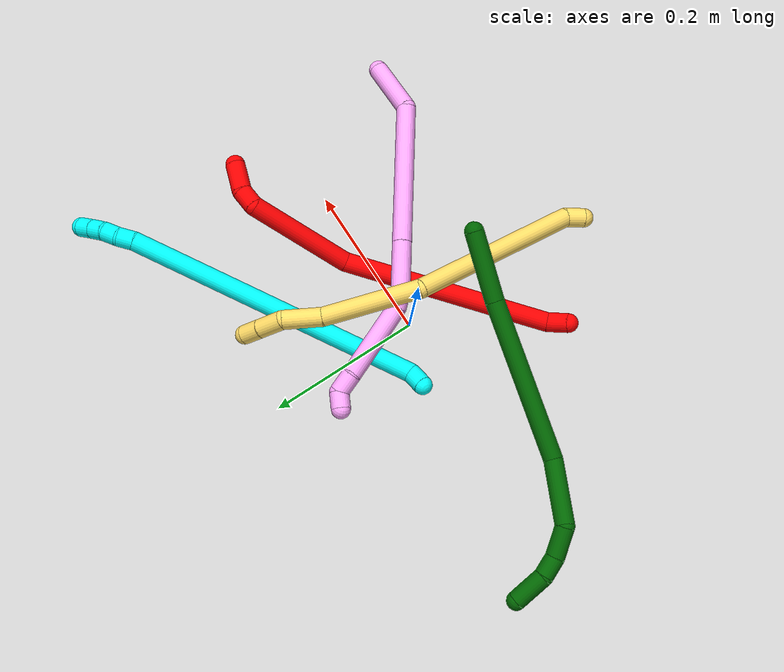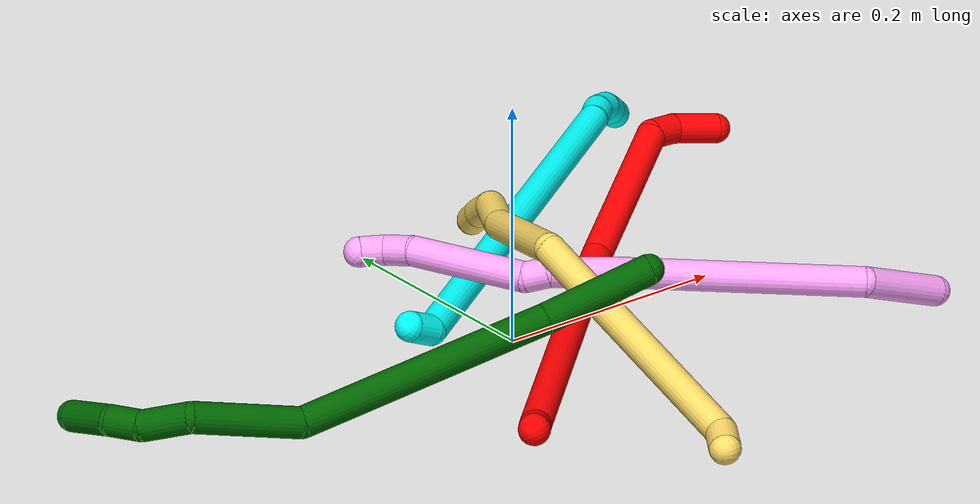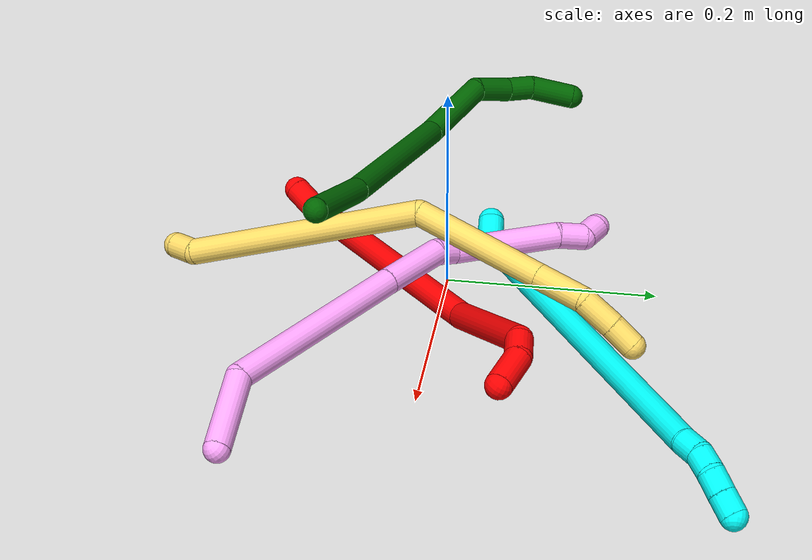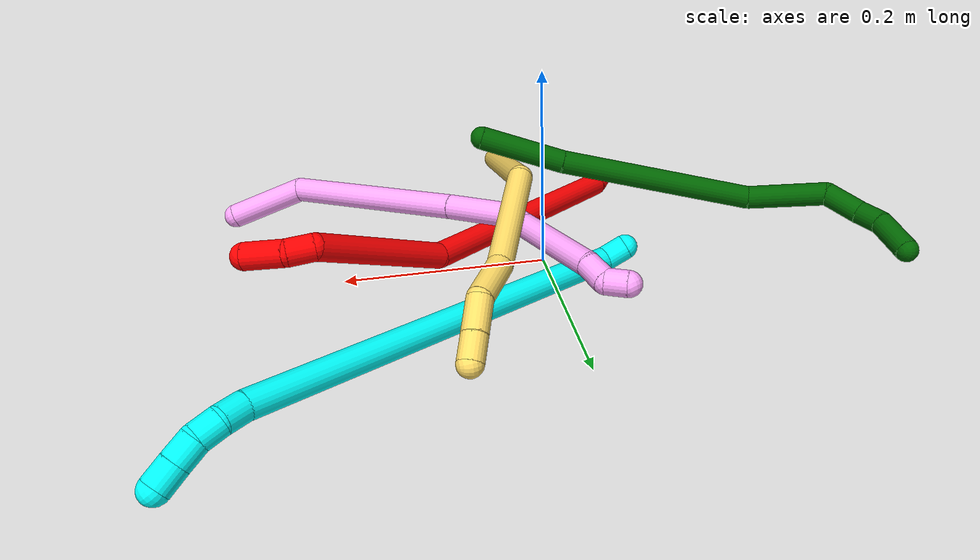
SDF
<sdf version="1.7">
 <world name="default">
  <model name="photoneo_s_sensor">
   <static>1</static>
   <pose>0 0 2 1.57079 1.57079 3.14159</pose>
   <link name="link">
    <inertial><mass>0.1</mass></inertial>
    <sensor name="sensor" type="depth">
     <update_rate>30</update_rate>
     <camera>
      <horizontal_fov>1.22</horizontal_fov>
      <image><width>1920</width><height>1200</height><format>B8G8R8</format></image>
      <clip><near>0.1</near><far>4</far></clip>
      <depth_camera><output>points</output></depth_camera>
     </camera>
     <plugin name="camera_plugin" filename="libgazebo_ros_depth_camera.so">
      <baseline>0.2</baseline>
      <alwaysOn>1</alwaysOn>
      <updateRate>0.0</updateRate>
      <cameraName>camera_ir</cameraName>
      <imageTopicName>/camera/color/image_raw</imageTopicName>
      <cameraInfoTopicName>/camera/color/camera_info</cameraInfoTopicName>
      <depthImageTopicName>/camera/depth/image_raw</depthImageTopicName>
      <depthImageCameraInfoTopicName>/camera/depth/camera_info</depthImageCameraInfoTopicName>
      <pointCloudTopicName>/camera/depth/points</pointCloudTopicName>
      <frameName>fr_optical</frameName>
      <pointCloudCutoff>0.1</pointCloudCutoff>
      <pointCloudCutoffMax>2.0</pointCloudCutoffMax>
      <distortionK1>0</distortionK1>
      <distortionK2>0</distortionK2>
      <distortionK3>0</distortionK3>
      <distortionT1>0</distortionT1>
      <distortionT2>0</distortionT2>
      <CxPrime>0</CxPrime>
      <Cx>0</Cx>
      <Cy>0</Cy>
      <focalLength>0</focalLength>
      <hackBaseline>0</hackBaseline>
     </plugin>
    </sensor>
   </link>
  </model>
  <model name="bin">
   <static>1</static>
   <link name="bottom">
    <collision name="collision-bottom">
     <pose>0 0 -0.01 0 -0 0</pose>
     <geometry><box><size>0.8 0.6 0.02</size></box></geometry>
     <surface>
      <friction><ode><mu>100</mu><mu2>100</mu2></ode></friction>
      <contact><collide_bitmask>65535</collide_bitmask></contact>
     </surface>
    </collision>
   </link>
   <link name="west_wall">
    <collision name="collision-west_wall">
     <pose>-0.41 0 0.1 0 -0 0</pose>
     <geometry><box><size>0.02 0.6 0.2</size></box></geometry>
     <surface>
      <friction><ode><mu>100</mu><mu2>100</mu2></ode></friction>
      <contact><collide_bitmask>65535</collide_bitmask></contact>
     </surface>
    </collision>
   </link>
   <link name="east_wall">
    <collision name="collision-east_wall">
     <pose>0.41 0 0.1 0 -0 0</pose>
     <geometry><box><size>0.02 0.6 0.2</size></box></geometry>
     <surface>
      <friction><ode><mu>100</mu><mu2>100</mu2></ode></friction>
      <contact><collide_bitmask>65535</collide_bitmask></contact>
     </surface>
    </collision>
   </link>
   <link name="south_wall">
    <collision name="collision-south_wall">
     <pose>0 -0.31 0.1 0 -0 0</pose>
     <geometry><box><size>0.8 0.02 0.2</size></box></geometry>
     <surface>
      <friction><ode><mu>100</mu><mu2>100</mu2></ode></friction>
      <contact><collide_bitmask>65535</collide_bitmask></contact>
     </surface>
    </collision>
   </link>
   <link name="north_wall">
    <collision name="collision-north_wall">
     <pose>0 0.31 0.1 0 -0 0</pose>
     <geometry><box><size>0.8 0.02 0.2</size></box></geometry>
     <surface>
      <friction><ode><mu>100</mu><mu2>100</mu2></ode></friction>
      <contact><collide_bitmask>65535</collide_bitmask></contact>
     </surface>
    </collision>
   </link>
  </model>
  <model name="2">
   <static>0</static>
   <link name="2">
    <collision name="collision-cylinder-e_1_1_4">
     <pose>0.00579 0.012523 -0.000291 -1.59406 0.432994 -0.442858</pose>
     <geometry><cylinder><radius>0.0125</radius><length>0.027599</length></cylinder></geometry>
     <surface>
      <friction><ode><mu>1.16</mu><mu2>1.16</mu2><slip1>0</slip1><slip2>0</slip2></ode></friction>
      <contact><ode><kp>1e+06</kp><kd>1</kd><max_vel>0</max_vel><min_depth>0.001</min_depth></ode></contact>
     </surface>
    </collision>
    <visual name="visual-cylinder-e_1_1_4">
     <pose>0.00579 0.012523 -0.000291 -1.59406 0.432994 -0.442858</pose>
     <geometry><cylinder><radius>0.0125</radius><length>0.027599</length></cylinder></geometry>
     <material><ambient>1 0 0 1</ambient></material>
    </visual>
    <collision name="collision-cylinder-e_2_4_5">
     <pose>0.100449 0.119313 0.037824 -1.18391 0.717724 -0.494125</pose>
     <geometry><cylinder><radius>0.0125</radius><length>0.270252</length></cylinder></geometry>
     <surface>
      <friction><ode><mu>1.16</mu><mu2>1.16</mu2><slip1>0</slip1><slip2>0</slip2></ode></friction>
      <contact><ode><kp>1e+06</kp><kd>1</kd><max_vel>0</max_vel><min_depth>0.001</min_depth></ode></contact>
     </surface>
    </collision>
    <visual name="visual-cylinder-e_2_4_5">
     <pose>0.100449 0.119313 0.037824 -1.18391 0.717724 -0.494125</pose>
     <geometry><cylinder><radius>0.0125</radius><length>0.270252</length></cylinder></geometry>
     <material><ambient>1 0 0 1</ambient></material>
    </visual>
    <collision name="collision-cylinder-e_3_5_6">
     <pose>0.244557 0.241364 0.108525 -0.710474 0.913865 -0.360802</pose>
     <geometry><cylinder><radius>0.0125</radius><length>0.139516</length></cylinder></geometry>
     <surface>
      <friction><ode><mu>1.16</mu><mu2>1.16</mu2><slip1>0</slip1><slip2>0</slip2></ode></friction>
      <contact><ode><kp>1e+06</kp><kd>1</kd><max_vel>0</max_vel><min_depth>0.001</min_depth></ode></contact>
     </surface>
    </collision>
    <visual name="visual-cylinder-e_3_5_6">
     <pose>0.244557 0.241364 0.108525 -0.710474 0.913865 -0.360802</pose>
     <geometry><cylinder><radius>0.0125</radius><length>0.139516</length></cylinder></geometry>
     <material><ambient>1 0 0 1</ambient></material>
    </visual>
    <collision name="collision-cylinder-e_4_6_7">
     <pose>0.311324 0.273181 0.138852 -2.0244 1.19965 -1.66072</pose>
     <geometry><cylinder><radius>0.0125</radius><length>0.02474</length></cylinder></geometry>
     <surface>
      <friction><ode><mu>1.16</mu><mu2>1.16</mu2><slip1>0</slip1><slip2>0</slip2></ode></friction>
      <contact><ode><kp>1e+06</kp><kd>1</kd><max_vel>0</max_vel><min_depth>0.001</min_depth></ode></contact>
     </surface>
    </collision>
    <visual name="visual-cylinder-e_4_6_7">
     <pose>0.311324 0.273181 0.138852 -2.0244 1.19965 -1.66072</pose>
     <geometry><cylinder><radius>0.0125</radius><length>0.02474</length></cylinder></geometry>
     <material><ambient>1 0 0 1</ambient></material>
    </visual>
    <collision name="collision-cylinder-e_5_7_2">
     <pose>0.340233 0.277027 0.129348 3.11687 1.16149 3.10393</pose>
     <geometry><cylinder><radius>0.0125</radius><length>0.037892</length></cylinder></geometry>
     <surface>
      <friction><ode><mu>1.16</mu><mu2>1.16</mu2><slip1>0</slip1><slip2>0</slip2></ode></friction>
      <contact><ode><kp>1e+06</kp><kd>1</kd><max_vel>0</max_vel><min_depth>0.001</min_depth></ode></contact>
     </surface>
    </collision>
    <visual name="visual-cylinder-e_5_7_2">
     <pose>0.340233 0.277027 0.129348 3.11687 1.16149 3.10393</pose>
     <geometry><cylinder><radius>0.0125</radius><length>0.037892</length></cylinder></geometry>
     <material><ambient>1 0 0 1</ambient></material>
    </visual>
    <collision name="collision-sphere-2">
     <pose>0.357614 0.276841 0.12181 0 -0 0</pose>
     <geometry><sphere><radius>0.0125</radius></sphere></geometry>
     <surface>
      <friction><ode><mu>1.16</mu><mu2>1.16</mu2><slip1>0</slip1><slip2>0</slip2></ode></friction>
      <contact><ode><kp>1e+06</kp><kd>1</kd><max_vel>0</max_vel><min_depth>0.001</min_depth></ode></contact>
     </surface>
    </collision>
    <visual name="visual-sphere-2">
     <pose>0.357614 0.276841 0.12181 0 -0 0</pose>
     <geometry><sphere><radius>0.0125</radius></sphere></geometry>
     <material><ambient>1 0 0 1</ambient></material>
    </visual>
    <collision name="collision-sphere-7">
     <pose>0.322852 0.277213 0.136886 0 -0 0</pose>
     <geometry><sphere><radius>0.0125</radius></sphere></geometry>
     <surface>
      <friction><ode><mu>1.16</mu><mu2>1.16</mu2><slip1>0</slip1><slip2>0</slip2></ode></friction>
      <contact><ode><kp>1e+06</kp><kd>1</kd><max_vel>0</max_vel><min_depth>0.001</min_depth></ode></contact>
     </surface>
    </collision>
    <visual name="visual-sphere-7">
     <pose>0.322852 0.277213 0.136886 0 -0 0</pose>
     <geometry><sphere><radius>0.0125</radius></sphere></geometry>
     <material><ambient>1 0 0 1</ambient></material>
    </visual>
    <collision name="collision-sphere-6">
     <pose>0.299796 0.269148 0.140818 0 -0 0</pose>
     <geometry><sphere><radius>0.0125</radius></sphere></geometry>
     <surface>
      <friction><ode><mu>1.16</mu><mu2>1.16</mu2><slip1>0</slip1><slip2>0</slip2></ode></friction>
      <contact><ode><kp>1e+06</kp><kd>1</kd><max_vel>0</max_vel><min_depth>0.001</min_depth></ode></contact>
     </surface>
    </collision>
    <visual name="visual-sphere-6">
     <pose>0.299796 0.269148 0.140818 0 -0 0</pose>
     <geometry><sphere><radius>0.0125</radius></sphere></geometry>
     <material><ambient>1 0 0 1</ambient></material>
    </visual>
    <collision name="collision-sphere-5">
     <pose>0.189318 0.21358 0.076231 0 -0 0</pose>
     <geometry><sphere><radius>0.0125</radius></sphere></geometry>
     <surface>
      <friction><ode><mu>1.16</mu><mu2>1.16</mu2><slip1>0</slip1><slip2>0</slip2></ode></friction>
      <contact><ode><kp>1e+06</kp><kd>1</kd><max_vel>0</max_vel><min_depth>0.001</min_depth></ode></contact>
     </surface>
    </collision>
    <visual name="visual-sphere-5">
     <pose>0.189318 0.21358 0.076231 0 -0 0</pose>
     <geometry><sphere><radius>0.0125</radius></sphere></geometry>
     <material><ambient>1 0 0 1</ambient></material>
    </visual>
    <collision name="collision-sphere-1">
     <geometry><sphere><radius>0.0125</radius></sphere></geometry>
     <surface>
      <friction><ode><mu>1.16</mu><mu2>1.16</mu2><slip1>0</slip1><slip2>0</slip2></ode></friction>
      <contact><ode><kp>1e+06</kp><kd>1</kd><max_vel>0</max_vel><min_depth>0.001</min_depth></ode></contact>
     </surface>
    </collision>
    <visual name="visual-sphere-1">
     <geometry><sphere><radius>0.0125</radius></sphere></geometry>
     <material><ambient>1 0 0 1</ambient></material>
    </visual>
    <collision name="collision-sphere-4">
     <pose>0.01158 0.025045 -0.000583 0 -0 0</pose>
     <geometry><sphere><radius>0.0125</radius></sphere></geometry>
     <surface>
      <friction><ode><mu>1.16</mu><mu2>1.16</mu2><slip1>0</slip1><slip2>0</slip2></ode></friction>
      <contact><ode><kp>1e+06</kp><kd>1</kd><max_vel>0</max_vel><min_depth>0.001</min_depth></ode></contact>
     </surface>
    </collision>
    <visual name="visual-sphere-4">
     <pose>0.01158 0.025045 -0.000583 0 -0 0</pose>
     <geometry><sphere><radius>0.0125</radius></sphere></geometry>
     <material><ambient>1 0 0 1</ambient></material>
    </visual>
    <inertial>
     <pose>0.164041 0.16704 0.067383 0 -0 0</pose>
     <mass>0.5</mass>
     <inertia>
      <ixx>0.000615</ixx>
      <ixy>0</ixy>
      <ixz>0</ixz>
      <iyy>0.000622</iyy>
      <iyz>0</iyz>
      <izz>-0.002522</izz>
     </inertia>
    </inertial>
   </link>
   <pose>-0.11045 -0.168459 0.02121 -0.47671 -0.222502 -0.133041</pose>
  </model>
  <model name="3">
   <static>0</static>
   <link name="3">
    <collision name="collision-cylinder-e_1_1_4">
     <pose>0.001082 0.001786 0.012099 -0.146581 0.088263 -0.006485</pose>
     <geometry><cylinder><radius>0.0125</radius><length>0.024556</length></cylinder></geometry>
     <surface>
      <friction><ode><mu>1.16</mu><mu2>1.16</mu2><slip1>0</slip1><slip2>0</slip2></ode></friction>
      <contact><ode><kp>1e+06</kp><kd>1</kd><max_vel>0</max_vel><min_depth>0.001</min_depth></ode></contact>
     </surface>
    </collision>
    <visual name="visual-cylinder-e_1_1_4">
     <pose>0.001082 0.001786 0.012099 -0.146581 0.088263 -0.006485</pose>
     <geometry><cylinder><radius>0.0125</radius><length>0.024556</length></cylinder></geometry>
     <material><ambient>0.003922 1 0.996078 1</ambient></material>
    </visual>
    <collision name="collision-cylinder-e_2_4_5">
     <pose>0.130586 0.066232 0.15812 -0.437625 0.715168 -0.165797</pose>
     <geometry><cylinder><radius>0.0125</radius><length>0.39168</length></cylinder></geometry>
     <surface>
      <friction><ode><mu>1.16</mu><mu2>1.16</mu2><slip1>0</slip1><slip2>0</slip2></ode></friction>
      <contact><ode><kp>1e+06</kp><kd>1</kd><max_vel>0</max_vel><min_depth>0.001</min_depth></ode></contact>
     </surface>
    </collision>
    <visual name="visual-cylinder-e_2_4_5">
     <pose>0.130586 0.066232 0.15812 -0.437625 0.715168 -0.165797</pose>
     <geometry><cylinder><radius>0.0125</radius><length>0.39168</length></cylinder></geometry>
     <material><ambient>0.003922 1 0.996078 1</ambient></material>
    </visual>
    <collision name="collision-cylinder-e_3_5_6">
     <pose>0.266872 0.130599 0.299088 -0.237711 0.826092 -0.104576</pose>
     <geometry><cylinder><radius>0.0125</radius><length>0.021393</length></cylinder></geometry>
     <surface>
      <friction><ode><mu>1.16</mu><mu2>1.16</mu2><slip1>0</slip1><slip2>0</slip2></ode></friction>
      <contact><ode><kp>1e+06</kp><kd>1</kd><max_vel>0</max_vel><min_depth>0.001</min_depth></ode></contact>
     </surface>
    </collision>
    <visual name="visual-cylinder-e_3_5_6">
     <pose>0.266872 0.130599 0.299088 -0.237711 0.826092 -0.104576</pose>
     <geometry><cylinder><radius>0.0125</radius><length>0.021393</length></cylinder></geometry>
     <material><ambient>0.003922 1 0.996078 1</ambient></material>
    </visual>
    <collision name="collision-cylinder-e_4_6_7">
     <pose>0.280119 0.133026 0.314747 -0.083395 0.556944 -0.023855</pose>
     <geometry><cylinder><radius>0.0125</radius><length>0.020364</length></cylinder></geometry>
     <surface>
      <friction><ode><mu>1.16</mu><mu2>1.16</mu2><slip1>0</slip1><slip2>0</slip2></ode></friction>
      <contact><ode><kp>1e+06</kp><kd>1</kd><max_vel>0</max_vel><min_depth>0.001</min_depth></ode></contact>
     </surface>
    </collision>
    <visual name="visual-cylinder-e_4_6_7">
     <pose>0.280119 0.133026 0.314747 -0.083395 0.556944 -0.023855</pose>
     <geometry><cylinder><radius>0.0125</radius><length>0.020364</length></cylinder></geometry>
     <material><ambient>0.003922 1 0.996078 1</ambient></material>
    </visual>
    <collision name="collision-cylinder-e_5_7_8">
     <pose>0.289921 0.131762 0.332658 0.210317 0.435187 0.046663</pose>
     <geometry><cylinder><radius>0.0125</radius><length>0.020969</length></cylinder></geometry>
     <surface>
      <friction><ode><mu>1.16</mu><mu2>1.16</mu2><slip1>0</slip1><slip2>0</slip2></ode></friction>
      <contact><ode><kp>1e+06</kp><kd>1</kd><max_vel>0</max_vel><min_depth>0.001</min_depth></ode></contact>
     </surface>
    </collision>
    <visual name="visual-cylinder-e_5_7_8">
     <pose>0.289921 0.131762 0.332658 0.210317 0.435187 0.046663</pose>
     <geometry><cylinder><radius>0.0125</radius><length>0.020969</length></cylinder></geometry>
     <material><ambient>0.003922 1 0.996078 1</ambient></material>
    </visual>
    <collision name="collision-cylinder-e_6_8_2">
     <pose>0.298843 0.12749 0.351184 0.242874 0.442176 0.054845</pose>
     <geometry><cylinder><radius>0.0125</radius><length>0.021037</length></cylinder></geometry>
     <surface>
      <friction><ode><mu>1.16</mu><mu2>1.16</mu2><slip1>0</slip1><slip2>0</slip2></ode></friction>
      <contact><ode><kp>1e+06</kp><kd>1</kd><max_vel>0</max_vel><min_depth>0.001</min_depth></ode></contact>
     </surface>
    </collision>
    <visual name="visual-cylinder-e_6_8_2">
     <pose>0.298843 0.12749 0.351184 0.242874 0.442176 0.054845</pose>
     <geometry><cylinder><radius>0.0125</radius><length>0.021037</length></cylinder></geometry>
     <material><ambient>0.003922 1 0.996078 1</ambient></material>
    </visual>
    <collision name="collision-sphere-2">
     <pose>0.303344 0.125204 0.360412 0 -0 0</pose>
     <geometry><sphere><radius>0.0125</radius></sphere></geometry>
     <surface>
      <friction><ode><mu>1.16</mu><mu2>1.16</mu2><slip1>0</slip1><slip2>0</slip2></ode></friction>
      <contact><ode><kp>1e+06</kp><kd>1</kd><max_vel>0</max_vel><min_depth>0.001</min_depth></ode></contact>
     </surface>
    </collision>
    <visual name="visual-sphere-2">
     <pose>0.303344 0.125204 0.360412 0 -0 0</pose>
     <geometry><sphere><radius>0.0125</radius></sphere></geometry>
     <material><ambient>0.003922 1 0.996078 1</ambient></material>
    </visual>
    <collision name="collision-sphere-4">
     <pose>0.002165 0.003573 0.024198 0 -0 0</pose>
     <geometry><sphere><radius>0.0125</radius></sphere></geometry>
     <surface>
      <friction><ode><mu>1.16</mu><mu2>1.16</mu2><slip1>0</slip1><slip2>0</slip2></ode></friction>
      <contact><ode><kp>1e+06</kp><kd>1</kd><max_vel>0</max_vel><min_depth>0.001</min_depth></ode></contact>
     </surface>
    </collision>
    <visual name="visual-sphere-4">
     <pose>0.002165 0.003573 0.024198 0 -0 0</pose>
     <geometry><sphere><radius>0.0125</radius></sphere></geometry>
     <material><ambient>0.003922 1 0.996078 1</ambient></material>
    </visual>
    <collision name="collision-sphere-1">
     <geometry><sphere><radius>0.0125</radius></sphere></geometry>
     <surface>
      <friction><ode><mu>1.16</mu><mu2>1.16</mu2><slip1>0</slip1><slip2>0</slip2></ode></friction>
      <contact><ode><kp>1e+06</kp><kd>1</kd><max_vel>0</max_vel><min_depth>0.001</min_depth></ode></contact>
     </surface>
    </collision>
    <visual name="visual-sphere-1">
     <geometry><sphere><radius>0.0125</radius></sphere></geometry>
     <material><ambient>0.003922 1 0.996078 1</ambient></material>
    </visual>
    <collision name="collision-sphere-8">
     <pose>0.294342 0.129777 0.341956 0 -0 0</pose>
     <geometry><sphere><radius>0.0125</radius></sphere></geometry>
     <surface>
      <friction><ode><mu>1.16</mu><mu2>1.16</mu2><slip1>0</slip1><slip2>0</slip2></ode></friction>
      <contact><ode><kp>1e+06</kp><kd>1</kd><max_vel>0</max_vel><min_depth>0.001</min_depth></ode></contact>
     </surface>
    </collision>
    <visual name="visual-sphere-8">
     <pose>0.294342 0.129777 0.341956 0 -0 0</pose>
     <geometry><sphere><radius>0.0125</radius></sphere></geometry>
     <material><ambient>0.003922 1 0.996078 1</ambient></material>
    </visual>
    <collision name="collision-sphere-5">
     <pose>0.259007 0.128892 0.292042 0 -0 0</pose>
     <geometry><sphere><radius>0.0125</radius></sphere></geometry>
     <surface>
      <friction><ode><mu>1.16</mu><mu2>1.16</mu2><slip1>0</slip1><slip2>0</slip2></ode></friction>
      <contact><ode><kp>1e+06</kp><kd>1</kd><max_vel>0</max_vel><min_depth>0.001</min_depth></ode></contact>
     </surface>
    </collision>
    <visual name="visual-sphere-5">
     <pose>0.259007 0.128892 0.292042 0 -0 0</pose>
     <geometry><sphere><radius>0.0125</radius></sphere></geometry>
     <material><ambient>0.003922 1 0.996078 1</ambient></material>
    </visual>
    <collision name="collision-sphere-6">
     <pose>0.274737 0.132306 0.306134 0 -0 0</pose>
     <geometry><sphere><radius>0.0125</radius></sphere></geometry>
     <surface>
      <friction><ode><mu>1.16</mu><mu2>1.16</mu2><slip1>0</slip1><slip2>0</slip2></ode></friction>
      <contact><ode><kp>1e+06</kp><kd>1</kd><max_vel>0</max_vel><min_depth>0.001</min_depth></ode></contact>
     </surface>
    </collision>
    <visual name="visual-sphere-6">
     <pose>0.274737 0.132306 0.306134 0 -0 0</pose>
     <geometry><sphere><radius>0.0125</radius></sphere></geometry>
     <material><ambient>0.003922 1 0.996078 1</ambient></material>
    </visual>
    <collision name="collision-sphere-7">
     <pose>0.285501 0.133746 0.32336 0 -0 0</pose>
     <geometry><sphere><radius>0.0125</radius></sphere></geometry>
     <surface>
      <friction><ode><mu>1.16</mu><mu2>1.16</mu2><slip1>0</slip1><slip2>0</slip2></ode></friction>
      <contact><ode><kp>1e+06</kp><kd>1</kd><max_vel>0</max_vel><min_depth>0.001</min_depth></ode></contact>
     </surface>
    </collision>
    <visual name="visual-sphere-7">
     <pose>0.285501 0.133746 0.32336 0 -0 0</pose>
     <geometry><sphere><radius>0.0125</radius></sphere></geometry>
     <material><ambient>0.003922 1 0.996078 1</ambient></material>
    </visual>
    <inertial>
     <pose>0.149909 0.073867 0.178802 0 -0 0</pose>
     <mass>0.5</mass>
     <inertia>
      <ixx>0.003145</ixx>
      <ixy>0</ixy>
      <ixz>0</ixz>
      <iyy>0.00411</iyy>
      <iyz>0</iyz>
      <izz>-0.004876</izz>
     </inertia>
    </inertial>
   </link>
   <pose>-0.076648 0.032303 0.022925 2.22522 -0.342615 1.38975</pose>
  </model>
  <model name="4">
   <static>0</static>
   <link name="4">
    <collision name="collision-cylinder-e_1_1_4">
     <pose>-0.037546 0.007259 -0.001847 -1.81993 -1.37387 1.62431</pose>
     <geometry><cylinder><radius>0.0125</radius><length>0.076571</length></cylinder></geometry>
     <surface>
      <friction><ode><mu>1.16</mu><mu2>1.16</mu2><slip1>0</slip1><slip2>0</slip2></ode></friction>
      <contact><ode><kp>1e+06</kp><kd>1</kd><max_vel>0</max_vel><min_depth>0.001</min_depth></ode></contact>
     </surface>
    </collision>
    <visual name="visual-cylinder-e_1_1_4">
     <pose>-0.037546 0.007259 -0.001847 -1.81993 -1.37387 1.62431</pose>
     <geometry><cylinder><radius>0.0125</radius><length>0.076571</length></cylinder></geometry>
     <material><ambient>1 0.65098 0.996078 1</ambient></material>
    </visual>
    <collision name="collision-cylinder-e_2_4_5">
     <pose>-0.142182 0.058773 -0.05067 -2.38602 -0.804787 1.64073</pose>
     <geometry><cylinder><radius>0.0125</radius><length>0.186187</length></cylinder></geometry>
     <surface>
      <friction><ode><mu>1.16</mu><mu2>1.16</mu2><slip1>0</slip1><slip2>0</slip2></ode></friction>
      <contact><ode><kp>1e+06</kp><kd>1</kd><max_vel>0</max_vel><min_depth>0.001</min_depth></ode></contact>
     </surface>
    </collision>
    <visual name="visual-cylinder-e_2_4_5">
     <pose>-0.142182 0.058773 -0.05067 -2.38602 -0.804787 1.64073</pose>
     <geometry><cylinder><radius>0.0125</radius><length>0.186187</length></cylinder></geometry>
     <material><ambient>1 0.65098 0.996078 1</ambient></material>
    </visual>
    <collision name="collision-cylinder-e_3_5_6">
     <pose>-0.232636 0.11798 -0.114887 -2.42714 -0.797126 1.69116</pose>
     <geometry><cylinder><radius>0.0125</radius><length>0.065319</length></cylinder></geometry>
     <surface>
      <friction><ode><mu>1.16</mu><mu2>1.16</mu2><slip1>0</slip1><slip2>0</slip2></ode></friction>
      <contact><ode><kp>1e+06</kp><kd>1</kd><max_vel>0</max_vel><min_depth>0.001</min_depth></ode></contact>
     </surface>
    </collision>
    <visual name="visual-cylinder-e_3_5_6">
     <pose>-0.232636 0.11798 -0.114887 -2.42714 -0.797126 1.69116</pose>
     <geometry><cylinder><radius>0.0125</radius><length>0.065319</length></cylinder></geometry>
     <material><ambient>1 0.65098 0.996078 1</ambient></material>
    </visual>
    <collision name="collision-cylinder-e_4_6_7">
     <pose>-0.260666 0.137012 -0.140408 -2.68382 -0.468122 1.59397</pose>
     <geometry><cylinder><radius>0.0125</radius><length>0.020688</length></cylinder></geometry>
     <surface>
      <friction><ode><mu>1.16</mu><mu2>1.16</mu2><slip1>0</slip1><slip2>0</slip2></ode></friction>
      <contact><ode><kp>1e+06</kp><kd>1</kd><max_vel>0</max_vel><min_depth>0.001</min_depth></ode></contact>
     </surface>
    </collision>
    <visual name="visual-cylinder-e_4_6_7">
     <pose>-0.260666 0.137012 -0.140408 -2.68382 -0.468122 1.59397</pose>
     <geometry><cylinder><radius>0.0125</radius><length>0.020688</length></cylinder></geometry>
     <material><ambient>1 0.65098 0.996078 1</ambient></material>
    </visual>
    <collision name="collision-cylinder-e_5_7_8">
     <pose>-0.278882 0.179672 -0.179457 -2.24404 -0.267951 0.545823</pose>
     <geometry><cylinder><radius>0.0125</radius><length>0.102347</length></cylinder></geometry>
     <surface>
      <friction><ode><mu>1.16</mu><mu2>1.16</mu2><slip1>0</slip1><slip2>0</slip2></ode></friction>
      <contact><ode><kp>1e+06</kp><kd>1</kd><max_vel>0</max_vel><min_depth>0.001</min_depth></ode></contact>
     </surface>
    </collision>
    <visual name="visual-cylinder-e_5_7_8">
     <pose>-0.278882 0.179672 -0.179457 -2.24404 -0.267951 0.545823</pose>
     <geometry><cylinder><radius>0.0125</radius><length>0.102347</length></cylinder></geometry>
     <material><ambient>1 0.65098 0.996078 1</ambient></material>
    </visual>
    <collision name="collision-cylinder-e_6_8_9">
     <pose>-0.294583 0.226952 -0.220343 -2.43132 -0.159927 0.425607</pose>
     <geometry><cylinder><radius>0.0125</radius><length>0.02703</length></cylinder></geometry>
     <surface>
      <friction><ode><mu>1.16</mu><mu2>1.16</mu2><slip1>0</slip1><slip2>0</slip2></ode></friction>
      <contact><ode><kp>1e+06</kp><kd>1</kd><max_vel>0</max_vel><min_depth>0.001</min_depth></ode></contact>
     </surface>
    </collision>
    <visual name="visual-cylinder-e_6_8_9">
     <pose>-0.294583 0.226952 -0.220343 -2.43132 -0.159927 0.425607</pose>
     <geometry><cylinder><radius>0.0125</radius><length>0.02703</length></cylinder></geometry>
     <material><ambient>1 0.65098 0.996078 1</ambient></material>
    </visual>
    <collision name="collision-cylinder-e_7_9_2">
     <pose>-0.305424 0.239327 -0.235977 -2.55397 -0.918995 2.04397</pose>
     <geometry><cylinder><radius>0.0125</radius><length>0.021858</length></cylinder></geometry>
     <surface>
      <friction><ode><mu>1.16</mu><mu2>1.16</mu2><slip1>0</slip1><slip2>0</slip2></ode></friction>
      <contact><ode><kp>1e+06</kp><kd>1</kd><max_vel>0</max_vel><min_depth>0.001</min_depth></ode></contact>
     </surface>
    </collision>
    <visual name="visual-cylinder-e_7_9_2">
     <pose>-0.305424 0.239327 -0.235977 -2.55397 -0.918995 2.04397</pose>
     <geometry><cylinder><radius>0.0125</radius><length>0.021858</length></cylinder></geometry>
     <material><ambient>1 0.65098 0.996078 1</ambient></material>
    </visual>
    <collision name="collision-sphere-2">
     <pose>-0.314112 0.243002 -0.241494 0 -0 0</pose>
     <geometry><sphere><radius>0.0125</radius></sphere></geometry>
     <surface>
      <friction><ode><mu>1.16</mu><mu2>1.16</mu2><slip1>0</slip1><slip2>0</slip2></ode></friction>
      <contact><ode><kp>1e+06</kp><kd>1</kd><max_vel>0</max_vel><min_depth>0.001</min_depth></ode></contact>
     </surface>
    </collision>
    <visual name="visual-sphere-2">
     <pose>-0.314112 0.243002 -0.241494 0 -0 0</pose>
     <geometry><sphere><radius>0.0125</radius></sphere></geometry>
     <material><ambient>1 0.65098 0.996078 1</ambient></material>
    </visual>
    <collision name="collision-sphere-9">
     <pose>-0.296735 0.235651 -0.230459 0 -0 0</pose>
     <geometry><sphere><radius>0.0125</radius></sphere></geometry>
     <surface>
      <friction><ode><mu>1.16</mu><mu2>1.16</mu2><slip1>0</slip1><slip2>0</slip2></ode></friction>
      <contact><ode><kp>1e+06</kp><kd>1</kd><max_vel>0</max_vel><min_depth>0.001</min_depth></ode></contact>
     </surface>
    </collision>
    <visual name="visual-sphere-9">
     <pose>-0.296735 0.235651 -0.230459 0 -0 0</pose>
     <geometry><sphere><radius>0.0125</radius></sphere></geometry>
     <material><ambient>1 0.65098 0.996078 1</ambient></material>
    </visual>
    <collision name="collision-sphere-4">
     <pose>-0.075091 0.014519 -0.003694 0 -0 0</pose>
     <geometry><sphere><radius>0.0125</radius></sphere></geometry>
     <surface>
      <friction><ode><mu>1.16</mu><mu2>1.16</mu2><slip1>0</slip1><slip2>0</slip2></ode></friction>
      <contact><ode><kp>1e+06</kp><kd>1</kd><max_vel>0</max_vel><min_depth>0.001</min_depth></ode></contact>
     </surface>
    </collision>
    <visual name="visual-sphere-4">
     <pose>-0.075091 0.014519 -0.003694 0 -0 0</pose>
     <geometry><sphere><radius>0.0125</radius></sphere></geometry>
     <material><ambient>1 0.65098 0.996078 1</ambient></material>
    </visual>
    <collision name="collision-sphere-1">
     <geometry><sphere><radius>0.0125</radius></sphere></geometry>
     <surface>
      <friction><ode><mu>1.16</mu><mu2>1.16</mu2><slip1>0</slip1><slip2>0</slip2></ode></friction>
      <contact><ode><kp>1e+06</kp><kd>1</kd><max_vel>0</max_vel><min_depth>0.001</min_depth></ode></contact>
     </surface>
    </collision>
    <visual name="visual-sphere-1">
     <geometry><sphere><radius>0.0125</radius></sphere></geometry>
     <material><ambient>1 0.65098 0.996078 1</ambient></material>
    </visual>
    <collision name="collision-sphere-8">
     <pose>-0.29243 0.218252 -0.210227 0 -0 0</pose>
     <geometry><sphere><radius>0.0125</radius></sphere></geometry>
     <surface>
      <friction><ode><mu>1.16</mu><mu2>1.16</mu2><slip1>0</slip1><slip2>0</slip2></ode></friction>
      <contact><ode><kp>1e+06</kp><kd>1</kd><max_vel>0</max_vel><min_depth>0.001</min_depth></ode></contact>
     </surface>
    </collision>
    <visual name="visual-sphere-8">
     <pose>-0.29243 0.218252 -0.210227 0 -0 0</pose>
     <geometry><sphere><radius>0.0125</radius></sphere></geometry>
     <material><ambient>1 0.65098 0.996078 1</ambient></material>
    </visual>
    <collision name="collision-sphere-5">
     <pose>-0.209273 0.103027 -0.097646 0 -0 0</pose>
     <geometry><sphere><radius>0.0125</radius></sphere></geometry>
     <surface>
      <friction><ode><mu>1.16</mu><mu2>1.16</mu2><slip1>0</slip1><slip2>0</slip2></ode></friction>
      <contact><ode><kp>1e+06</kp><kd>1</kd><max_vel>0</max_vel><min_depth>0.001</min_depth></ode></contact>
     </surface>
    </collision>
    <visual name="visual-sphere-5">
     <pose>-0.209273 0.103027 -0.097646 0 -0 0</pose>
     <geometry><sphere><radius>0.0125</radius></sphere></geometry>
     <material><ambient>1 0.65098 0.996078 1</ambient></material>
    </visual>
    <collision name="collision-sphere-6">
     <pose>-0.255999 0.132932 -0.132127 0 -0 0</pose>
     <geometry><sphere><radius>0.0125</radius></sphere></geometry>
     <surface>
      <friction><ode><mu>1.16</mu><mu2>1.16</mu2><slip1>0</slip1><slip2>0</slip2></ode></friction>
      <contact><ode><kp>1e+06</kp><kd>1</kd><max_vel>0</max_vel><min_depth>0.001</min_depth></ode></contact>
     </surface>
    </collision>
    <visual name="visual-sphere-6">
     <pose>-0.255999 0.132932 -0.132127 0 -0 0</pose>
     <geometry><sphere><radius>0.0125</radius></sphere></geometry>
     <material><ambient>1 0.65098 0.996078 1</ambient></material>
    </visual>
    <collision name="collision-sphere-7">
     <pose>-0.265334 0.141092 -0.148688 0 -0 0</pose>
     <geometry><sphere><radius>0.0125</radius></sphere></geometry>
     <surface>
      <friction><ode><mu>1.16</mu><mu2>1.16</mu2><slip1>0</slip1><slip2>0</slip2></ode></friction>
      <contact><ode><kp>1e+06</kp><kd>1</kd><max_vel>0</max_vel><min_depth>0.001</min_depth></ode></contact>
     </surface>
    </collision>
    <visual name="visual-sphere-7">
     <pose>-0.265334 0.141092 -0.148688 0 -0 0</pose>
     <geometry><sphere><radius>0.0125</radius></sphere></geometry>
     <material><ambient>1 0.65098 0.996078 1</ambient></material>
    </visual>
    <inertial>
     <pose>-0.186234 0.103588 -0.098931 0 -0 0</pose>
     <mass>0.5</mass>
     <inertia>
      <ixx>0.000478</ixx>
      <ixy>0</ixy>
      <ixz>0</ixz>
      <iyy>0.000782</iyy>
      <iyz>0</iyz>
      <izz>0.000107</izz>
     </inertia>
    </inertial>
   </link>
   <pose>0.310767 -0.155032 0.011676 0.598736 0.29198 0.130517</pose>
  </model>
  <model name="5">
   <static>0</static>
   <link name="5">
    <collision name="collision-cylinder-e_1_1_4">
     <pose>0.001194 0.009402 0.007775 -0.879845 0.097573 -0.045955</pose>
     <geometry><cylinder><radius>0.0125</radius><length>0.024517</length></cylinder></geometry>
     <surface>
      <friction><ode><mu>1.16</mu><mu2>1.16</mu2><slip1>0</slip1><slip2>0</slip2></ode></friction>
      <contact><ode><kp>1e+06</kp><kd>1</kd><max_vel>0</max_vel><min_depth>0.001</min_depth></ode></contact>
     </surface>
    </collision>
    <visual name="visual-cylinder-e_1_1_4">
     <pose>0.001194 0.009402 0.007775 -0.879845 0.097573 -0.045955</pose>
     <geometry><cylinder><radius>0.0125</radius><length>0.024517</length></cylinder></geometry>
     <material><ambient>1 0.858824 0.4 1</ambient></material>
    </visual>
    <collision name="collision-cylinder-e_2_4_5">
     <pose>-0.000683 0.13436 0.033129 -1.41983 -0.026271 0.022577</pose>
     <geometry><cylinder><radius>0.0125</radius><length>0.233852</length></cylinder></geometry>
     <surface>
      <friction><ode><mu>1.16</mu><mu2>1.16</mu2><slip1>0</slip1><slip2>0</slip2></ode></friction>
      <contact><ode><kp>1e+06</kp><kd>1</kd><max_vel>0</max_vel><min_depth>0.001</min_depth></ode></contact>
     </surface>
    </collision>
    <visual name="visual-cylinder-e_2_4_5">
     <pose>-0.000683 0.13436 0.033129 -1.41983 -0.026271 0.022577</pose>
     <geometry><cylinder><radius>0.0125</radius><length>0.233852</length></cylinder></geometry>
     <material><ambient>1 0.858824 0.4 1</ambient></material>
    </visual>
    <collision name="collision-cylinder-e_3_5_6">
     <pose>0.027035 0.299154 0.079197 -1.04626 0.4961 -0.290079</pose>
     <geometry><cylinder><radius>0.0125</radius><length>0.129367</length></cylinder></geometry>
     <surface>
      <friction><ode><mu>1.16</mu><mu2>1.16</mu2><slip1>0</slip1><slip2>0</slip2></ode></friction>
      <contact><ode><kp>1e+06</kp><kd>1</kd><max_vel>0</max_vel><min_depth>0.001</min_depth></ode></contact>
     </surface>
    </collision>
    <visual name="visual-cylinder-e_3_5_6">
     <pose>0.027035 0.299154 0.079197 -1.04626 0.4961 -0.290079</pose>
     <geometry><cylinder><radius>0.0125</radius><length>0.129367</length></cylinder></geometry>
     <material><ambient>1 0.858824 0.4 1</ambient></material>
    </visual>
    <collision name="collision-cylinder-e_4_6_7">
     <pose>0.065806 0.367305 0.122965 -0.891285 0.317194 -0.152508</pose>
     <geometry><cylinder><radius>0.0125</radius><length>0.051181</length></cylinder></geometry>
     <surface>
      <friction><ode><mu>1.16</mu><mu2>1.16</mu2><slip1>0</slip1><slip2>0</slip2></ode></friction>
      <contact><ode><kp>1e+06</kp><kd>1</kd><max_vel>0</max_vel><min_depth>0.001</min_depth></ode></contact>
     </surface>
    </collision>
    <visual name="visual-cylinder-e_4_6_7">
     <pose>0.065806 0.367305 0.122965 -0.891285 0.317194 -0.152508</pose>
     <geometry><cylinder><radius>0.0125</radius><length>0.051181</length></cylinder></geometry>
     <material><ambient>1 0.858824 0.4 1</ambient></material>
    </visual>
    <collision name="collision-cylinder-e_5_7_8">
     <pose>0.08638 0.396242 0.144924 -0.982977 0.807565 -0.44969</pose>
     <geometry><cylinder><radius>0.0125</radius><length>0.034852</length></cylinder></geometry>
     <surface>
      <friction><ode><mu>1.16</mu><mu2>1.16</mu2><slip1>0</slip1><slip2>0</slip2></ode></friction>
      <contact><ode><kp>1e+06</kp><kd>1</kd><max_vel>0</max_vel><min_depth>0.001</min_depth></ode></contact>
     </surface>
    </collision>
    <visual name="visual-cylinder-e_5_7_8">
     <pose>0.08638 0.396242 0.144924 -0.982977 0.807565 -0.44969</pose>
     <geometry><cylinder><radius>0.0125</radius><length>0.034852</length></cylinder></geometry>
     <material><ambient>1 0.858824 0.4 1</ambient></material>
    </visual>
    <collision name="collision-cylinder-e_6_8_2">
     <pose>0.108947 0.413131 0.156643 -0.937666 0.864144 -0.458898</pose>
     <geometry><cylinder><radius>0.0125</radius><length>0.026232</length></cylinder></geometry>
     <surface>
      <friction><ode><mu>1.16</mu><mu2>1.16</mu2><slip1>0</slip1><slip2>0</slip2></ode></friction>
      <contact><ode><kp>1e+06</kp><kd>1</kd><max_vel>0</max_vel><min_depth>0.001</min_depth></ode></contact>
     </surface>
    </collision>
    <visual name="visual-cylinder-e_6_8_2">
     <pose>0.108947 0.413131 0.156643 -0.937666 0.864144 -0.458898</pose>
     <geometry><cylinder><radius>0.0125</radius><length>0.026232</length></cylinder></geometry>
     <material><ambient>1 0.858824 0.4 1</ambient></material>
    </visual>
    <collision name="collision-sphere-2">
     <pose>0.118922 0.419997 0.161682 0 -0 0</pose>
     <geometry><sphere><radius>0.0125</radius></sphere></geometry>
     <surface>
      <friction><ode><mu>1.16</mu><mu2>1.16</mu2><slip1>0</slip1><slip2>0</slip2></ode></friction>
      <contact><ode><kp>1e+06</kp><kd>1</kd><max_vel>0</max_vel><min_depth>0.001</min_depth></ode></contact>
     </surface>
    </collision>
    <visual name="visual-sphere-2">
     <pose>0.118922 0.419997 0.161682 0 -0 0</pose>
     <geometry><sphere><radius>0.0125</radius></sphere></geometry>
     <material><ambient>1 0.858824 0.4 1</ambient></material>
    </visual>
    <collision name="collision-sphere-4">
     <pose>0.002388 0.018804 0.01555 0 -0 0</pose>
     <geometry><sphere><radius>0.0125</radius></sphere></geometry>
     <surface>
      <friction><ode><mu>1.16</mu><mu2>1.16</mu2><slip1>0</slip1><slip2>0</slip2></ode></friction>
      <contact><ode><kp>1e+06</kp><kd>1</kd><max_vel>0</max_vel><min_depth>0.001</min_depth></ode></contact>
     </surface>
    </collision>
    <visual name="visual-sphere-4">
     <pose>0.002388 0.018804 0.01555 0 -0 0</pose>
     <geometry><sphere><radius>0.0125</radius></sphere></geometry>
     <material><ambient>1 0.858824 0.4 1</ambient></material>
    </visual>
    <collision name="collision-sphere-1">
     <geometry><sphere><radius>0.0125</radius></sphere></geometry>
     <surface>
      <friction><ode><mu>1.16</mu><mu2>1.16</mu2><slip1>0</slip1><slip2>0</slip2></ode></friction>
      <contact><ode><kp>1e+06</kp><kd>1</kd><max_vel>0</max_vel><min_depth>0.001</min_depth></ode></contact>
     </surface>
    </collision>
    <visual name="visual-sphere-1">
     <geometry><sphere><radius>0.0125</radius></sphere></geometry>
     <material><ambient>1 0.858824 0.4 1</ambient></material>
    </visual>
    <collision name="collision-sphere-8">
     <pose>0.098972 0.406266 0.151604 0 -0 0</pose>
     <geometry><sphere><radius>0.0125</radius></sphere></geometry>
     <surface>
      <friction><ode><mu>1.16</mu><mu2>1.16</mu2><slip1>0</slip1><slip2>0</slip2></ode></friction>
      <contact><ode><kp>1e+06</kp><kd>1</kd><max_vel>0</max_vel><min_depth>0.001</min_depth></ode></contact>
     </surface>
    </collision>
    <visual name="visual-sphere-8">
     <pose>0.098972 0.406266 0.151604 0 -0 0</pose>
     <geometry><sphere><radius>0.0125</radius></sphere></geometry>
     <material><ambient>1 0.858824 0.4 1</ambient></material>
    </visual>
    <collision name="collision-sphere-5">
     <pose>-0.003754 0.249916 0.050708 0 -0 0</pose>
     <geometry><sphere><radius>0.0125</radius></sphere></geometry>
     <surface>
      <friction><ode><mu>1.16</mu><mu2>1.16</mu2><slip1>0</slip1><slip2>0</slip2></ode></friction>
      <contact><ode><kp>1e+06</kp><kd>1</kd><max_vel>0</max_vel><min_depth>0.001</min_depth></ode></contact>
     </surface>
    </collision>
    <visual name="visual-sphere-5">
     <pose>-0.003754 0.249916 0.050708 0 -0 0</pose>
     <geometry><sphere><radius>0.0125</radius></sphere></geometry>
     <material><ambient>1 0.858824 0.4 1</ambient></material>
    </visual>
    <collision name="collision-sphere-6">
     <pose>0.057824 0.348392 0.107686 0 -0 0</pose>
     <geometry><sphere><radius>0.0125</radius></sphere></geometry>
     <surface>
      <friction><ode><mu>1.16</mu><mu2>1.16</mu2><slip1>0</slip1><slip2>0</slip2></ode></friction>
      <contact><ode><kp>1e+06</kp><kd>1</kd><max_vel>0</max_vel><min_depth>0.001</min_depth></ode></contact>
     </surface>
    </collision>
    <visual name="visual-sphere-6">
     <pose>0.057824 0.348392 0.107686 0 -0 0</pose>
     <geometry><sphere><radius>0.0125</radius></sphere></geometry>
     <material><ambient>1 0.858824 0.4 1</ambient></material>
    </visual>
    <collision name="collision-sphere-7">
     <pose>0.073788 0.386218 0.138244 0 -0 0</pose>
     <geometry><sphere><radius>0.0125</radius></sphere></geometry>
     <surface>
      <friction><ode><mu>1.16</mu><mu2>1.16</mu2><slip1>0</slip1><slip2>0</slip2></ode></friction>
      <contact><ode><kp>1e+06</kp><kd>1</kd><max_vel>0</max_vel><min_depth>0.001</min_depth></ode></contact>
     </surface>
    </collision>
    <visual name="visual-sphere-7">
     <pose>0.073788 0.386218 0.138244 0 -0 0</pose>
     <geometry><sphere><radius>0.0125</radius></sphere></geometry>
     <material><ambient>1 0.858824 0.4 1</ambient></material>
    </visual>
    <inertial>
     <pose>0.025207 0.227594 0.067273 0 -0 0</pose>
     <mass>0.5</mass>
     <inertia>
      <ixx>0.001232</ixx>
      <ixy>0</ixy>
      <ixz>0</ixz>
      <iyy>0.000295</iyy>
      <iyz>0</iyz>
      <izz>-0.001276</izz>
     </inertia>
    </inertial>
   </link>
   <pose>-0.004912 -0.267354 0.011492 1.66046 1.28442 1.77893</pose>
  </model>
  <model name="6">
   <static>0</static>
   <link name="6">
    <collision name="collision-cylinder-e_1_1_4">
     <pose>-0.03156 0.00444 0.032706 -0.134943 -0.763004 0.054202</pose>
     <geometry><cylinder><radius>0.0125</radius><length>0.091332</length></cylinder></geometry>
     <surface>
      <friction><ode><mu>1.16</mu><mu2>1.16</mu2><slip1>0</slip1><slip2>0</slip2></ode></friction>
      <contact><ode><kp>1e+06</kp><kd>1</kd><max_vel>0</max_vel><min_depth>0.001</min_depth></ode></contact>
     </surface>
    </collision>
    <visual name="visual-cylinder-e_1_1_4">
     <pose>-0.03156 0.00444 0.032706 -0.134943 -0.763004 0.054202</pose>
     <geometry><cylinder><radius>0.0125</radius><length>0.091332</length></cylinder></geometry>
     <material><ambient>0 0.392157 0.003922 1</ambient></material>
    </visual>
    <collision name="collision-cylinder-e_2_4_5">
     <pose>-0.130021 0.026434 0.144623 -0.218074 -0.689559 0.078587</pose>
     <geometry><cylinder><radius>0.0125</radius><length>0.210317</length></cylinder></geometry>
     <surface>
      <friction><ode><mu>1.16</mu><mu2>1.16</mu2><slip1>0</slip1><slip2>0</slip2></ode></friction>
      <contact><ode><kp>1e+06</kp><kd>1</kd><max_vel>0</max_vel><min_depth>0.001</min_depth></ode></contact>
     </surface>
    </collision>
    <visual name="visual-cylinder-e_2_4_5">
     <pose>-0.130021 0.026434 0.144623 -0.218074 -0.689559 0.078587</pose>
     <geometry><cylinder><radius>0.0125</radius><length>0.210317</length></cylinder></geometry>
     <material><ambient>0 0.392157 0.003922 1</ambient></material>
    </visual>
    <collision name="collision-cylinder-e_3_5_6">
     <pose>-0.225469 0.066738 0.245841 -0.802016 -0.733841 0.323054</pose>
     <geometry><cylinder><radius>0.0125</radius><length>0.085249</length></cylinder></geometry>
     <surface>
      <friction><ode><mu>1.16</mu><mu2>1.16</mu2><slip1>0</slip1><slip2>0</slip2></ode></friction>
      <contact><ode><kp>1e+06</kp><kd>1</kd><max_vel>0</max_vel><min_depth>0.001</min_depth></ode></contact>
     </surface>
    </collision>
    <visual name="visual-cylinder-e_3_5_6">
     <pose>-0.225469 0.066738 0.245841 -0.802016 -0.733841 0.323054</pose>
     <geometry><cylinder><radius>0.0125</radius><length>0.085249</length></cylinder></geometry>
     <material><ambient>0 0.392157 0.003922 1</ambient></material>
    </visual>
    <collision name="collision-cylinder-e_4_6_7">
     <pose>-0.273813 0.091893 0.272001 -0.524753 -1.333 0.416377</pose>
     <geometry><cylinder><radius>0.0125</radius><length>0.040741</length></cylinder></geometry>
     <surface>
      <friction><ode><mu>1.16</mu><mu2>1.16</mu2><slip1>0</slip1><slip2>0</slip2></ode></friction>
      <contact><ode><kp>1e+06</kp><kd>1</kd><max_vel>0</max_vel><min_depth>0.001</min_depth></ode></contact>
     </surface>
    </collision>
    <visual name="visual-cylinder-e_4_6_7">
     <pose>-0.273813 0.091893 0.272001 -0.524753 -1.333 0.416377</pose>
     <geometry><cylinder><radius>0.0125</radius><length>0.040741</length></cylinder></geometry>
     <material><ambient>0 0.392157 0.003922 1</ambient></material>
    </visual>
    <collision name="collision-cylinder-e_5_7_8">
     <pose>-0.30672 0.098354 0.275122 -1.81982 -1.26174 1.50838</pose>
     <geometry><cylinder><radius>0.0125</radius><length>0.027523</length></cylinder></geometry>
     <surface>
      <friction><ode><mu>1.16</mu><mu2>1.16</mu2><slip1>0</slip1><slip2>0</slip2></ode></friction>
      <contact><ode><kp>1e+06</kp><kd>1</kd><max_vel>0</max_vel><min_depth>0.001</min_depth></ode></contact>
     </surface>
    </collision>
    <visual name="visual-cylinder-e_5_7_8">
     <pose>-0.30672 0.098354 0.275122 -1.81982 -1.26174 1.50838</pose>
     <geometry><cylinder><radius>0.0125</radius><length>0.027523</length></cylinder></geometry>
     <material><ambient>0 0.392157 0.003922 1</ambient></material>
    </visual>
    <collision name="collision-cylinder-e_6_8_2">
     <pose>-0.34113 0.103455 0.267177 -2.99151 -1.25362 2.93472</pose>
     <geometry><cylinder><radius>0.0125</radius><length>0.044838</length></cylinder></geometry>
     <surface>
      <friction><ode><mu>1.16</mu><mu2>1.16</mu2><slip1>0</slip1><slip2>0</slip2></ode></friction>
      <contact><ode><kp>1e+06</kp><kd>1</kd><max_vel>0</max_vel><min_depth>0.001</min_depth></ode></contact>
     </surface>
    </collision>
    <visual name="visual-cylinder-e_6_8_2">
     <pose>-0.34113 0.103455 0.267177 -2.99151 -1.25362 2.93472</pose>
     <geometry><cylinder><radius>0.0125</radius><length>0.044838</length></cylinder></geometry>
     <material><ambient>0 0.392157 0.003922 1</ambient></material>
    </visual>
    <collision name="collision-sphere-2">
     <pose>-0.362431 0.104501 0.260264 0 -0 0</pose>
     <geometry><sphere><radius>0.0125</radius></sphere></geometry>
     <surface>
      <friction><ode><mu>1.16</mu><mu2>1.16</mu2><slip1>0</slip1><slip2>0</slip2></ode></friction>
      <contact><ode><kp>1e+06</kp><kd>1</kd><max_vel>0</max_vel><min_depth>0.001</min_depth></ode></contact>
     </surface>
    </collision>
    <visual name="visual-sphere-2">
     <pose>-0.362431 0.104501 0.260264 0 -0 0</pose>
     <geometry><sphere><radius>0.0125</radius></sphere></geometry>
     <material><ambient>0 0.392157 0.003922 1</ambient></material>
    </visual>
    <collision name="collision-sphere-4">
     <pose>-0.063119 0.008881 0.065412 0 -0 0</pose>
     <geometry><sphere><radius>0.0125</radius></sphere></geometry>
     <surface>
      <friction><ode><mu>1.16</mu><mu2>1.16</mu2><slip1>0</slip1><slip2>0</slip2></ode></friction>
      <contact><ode><kp>1e+06</kp><kd>1</kd><max_vel>0</max_vel><min_depth>0.001</min_depth></ode></contact>
     </surface>
    </collision>
    <visual name="visual-sphere-4">
     <pose>-0.063119 0.008881 0.065412 0 -0 0</pose>
     <geometry><sphere><radius>0.0125</radius></sphere></geometry>
     <material><ambient>0 0.392157 0.003922 1</ambient></material>
    </visual>
    <collision name="collision-sphere-1">
     <geometry><sphere><radius>0.0125</radius></sphere></geometry>
     <surface>
      <friction><ode><mu>1.16</mu><mu2>1.16</mu2><slip1>0</slip1><slip2>0</slip2></ode></friction>
      <contact><ode><kp>1e+06</kp><kd>1</kd><max_vel>0</max_vel><min_depth>0.001</min_depth></ode></contact>
     </surface>
    </collision>
    <visual name="visual-sphere-1">
     <geometry><sphere><radius>0.0125</radius></sphere></geometry>
     <material><ambient>0 0.392157 0.003922 1</ambient></material>
    </visual>
    <collision name="collision-sphere-8">
     <pose>-0.319829 0.10241 0.274091 0 -0 0</pose>
     <geometry><sphere><radius>0.0125</radius></sphere></geometry>
     <surface>
      <friction><ode><mu>1.16</mu><mu2>1.16</mu2><slip1>0</slip1><slip2>0</slip2></ode></friction>
      <contact><ode><kp>1e+06</kp><kd>1</kd><max_vel>0</max_vel><min_depth>0.001</min_depth></ode></contact>
     </surface>
    </collision>
    <visual name="visual-sphere-8">
     <pose>-0.319829 0.10241 0.274091 0 -0 0</pose>
     <geometry><sphere><radius>0.0125</radius></sphere></geometry>
     <material><ambient>0 0.392157 0.003922 1</ambient></material>
    </visual>
    <collision name="collision-sphere-5">
     <pose>-0.196923 0.043987 0.223834 0 -0 0</pose>
     <geometry><sphere><radius>0.0125</radius></sphere></geometry>
     <surface>
      <friction><ode><mu>1.16</mu><mu2>1.16</mu2><slip1>0</slip1><slip2>0</slip2></ode></friction>
      <contact><ode><kp>1e+06</kp><kd>1</kd><max_vel>0</max_vel><min_depth>0.001</min_depth></ode></contact>
     </surface>
    </collision>
    <visual name="visual-sphere-5">
     <pose>-0.196923 0.043987 0.223834 0 -0 0</pose>
     <geometry><sphere><radius>0.0125</radius></sphere></geometry>
     <material><ambient>0 0.392157 0.003922 1</ambient></material>
    </visual>
    <collision name="collision-sphere-6">
     <pose>-0.254016 0.089489 0.267848 0 -0 0</pose>
     <geometry><sphere><radius>0.0125</radius></sphere></geometry>
     <surface>
      <friction><ode><mu>1.16</mu><mu2>1.16</mu2><slip1>0</slip1><slip2>0</slip2></ode></friction>
      <contact><ode><kp>1e+06</kp><kd>1</kd><max_vel>0</max_vel><min_depth>0.001</min_depth></ode></contact>
     </surface>
    </collision>
    <visual name="visual-sphere-6">
     <pose>-0.254016 0.089489 0.267848 0 -0 0</pose>
     <geometry><sphere><radius>0.0125</radius></sphere></geometry>
     <material><ambient>0 0.392157 0.003922 1</ambient></material>
    </visual>
    <collision name="collision-sphere-7">
     <pose>-0.293611 0.094297 0.276154 0 -0 0</pose>
     <geometry><sphere><radius>0.0125</radius></sphere></geometry>
     <surface>
      <friction><ode><mu>1.16</mu><mu2>1.16</mu2><slip1>0</slip1><slip2>0</slip2></ode></friction>
      <contact><ode><kp>1e+06</kp><kd>1</kd><max_vel>0</max_vel><min_depth>0.001</min_depth></ode></contact>
     </surface>
    </collision>
    <visual name="visual-sphere-7">
     <pose>-0.293611 0.094297 0.276154 0 -0 0</pose>
     <geometry><sphere><radius>0.0125</radius></sphere></geometry>
     <material><ambient>0 0.392157 0.003922 1</ambient></material>
    </visual>
    <inertial>
     <pose>-0.168684 0.045488 0.16999 0 -0 0</pose>
     <mass>0.5</mass>
     <inertia>
      <ixx>0.000725</ixx>
      <ixy>0</ixy>
      <ixz>0</ixz>
      <iyy>0.000975</iyy>
      <iyz>0</iyz>
      <izz>0.000452</izz>
     </inertia>
    </inertial>
   </link>
   <pose>0.04183 -0.118099 0.092988 1.76304 -0.369186 -1.11853</pose>
  </model>
 </world>
</sdf>
